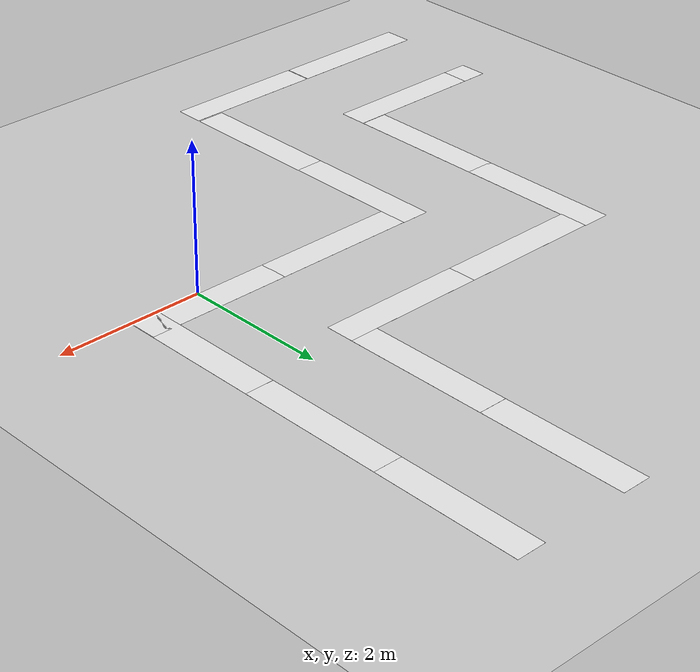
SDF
<sdf version="1.6">
 <world name="default">
  <light name="sun" type="directional">
   <pose>0 0 10 0 -0 0</pose>
   <diffuse>0.8 0.8 0.8 1</diffuse>
   <specular>0.2 0.2 0.2 1</specular>
   <attenuation>
    <range>1000</range>
    <constant>0.9</constant>
    <linear>0.01</linear>
    <quadratic>0.001</quadratic>
   </attenuation>
   <direction>-0.5 0.1 -0.9</direction>
  </light>
  <model name="ground_plane">
   <static>1</static>
   <link name="link">
    <collision name="collision">
     <geometry><plane><normal>0 0 1</normal><size>100 100</size></plane></geometry>
     <surface>
      <contact><collide_bitmask>65535</collide_bitmask></contact>
      <friction><ode><mu>100</mu><mu2>50</mu2></ode></friction>
     </surface>
    </collision>
    <visual name="visual">
     <cast_shadows>0</cast_shadows>
     <geometry><plane><normal>0 0 1</normal><size>100 100</size></plane></geometry>
     <material>
      <script><uri>file://media/materials/scripts/gazebo.material</uri><name>Gazebo/Grey</name></script>
     </material>
    </visual>
   </link>
  </model>
  <gravity>0 0 -9.8</gravity>
  <magnetic_field>6e-06 2.3e-05 -4.2e-05</magnetic_field>
  <atmosphere type="adiabatic"/>
  <physics name="default_physics" default="0" type="ode">
   <max_step_size>0.001</max_step_size>
   <real_time_factor>1</real_time_factor>
   <real_time_update_rate>1000</real_time_update_rate>
  </physics>
  <scene><ambient>0.4 0.4 0.4 1</ambient><background>0.7 0.7 0.7 1</background><shadows>1</shadows></scene>
  <audio><device>default</device></audio>
  <spherical_coordinates>
   <surface_model>EARTH_WGS84</surface_model>
   <latitude_deg>0</latitude_deg>
   <longitude_deg>0</longitude_deg>
   <elevation>0</elevation>
   <heading_deg>0</heading_deg>
  </spherical_coordinates>
  <model name="white line">
   <static>1</static>
   <link name="link_ground">
    <collision name="collision">
     <geometry><plane><normal>0 0 1</normal><size>0.4 2</size></plane></geometry>
     <surface><friction><ode><mu>100</mu><mu2>50</mu2></ode></friction></surface>
    </collision>
    <visual name="visual_ground">
     <cast_shadows>0</cast_shadows>
     <geometry><plane><normal>0 0 1</normal><size>0.4 2</size></plane></geometry>
     <material>
      <script><uri>file://media/materials/scripts/gazebo.material</uri><name>Gazebo/White</name></script>
     </material>
    </visual>
   </link>
   <pose>0.800172 5.00563 0 0 -0 0</pose>
  </model>
  <model name="white line_0">
   <static>1</static>
   <link name="link_ground">
    <collision name="collision">
     <geometry><plane><normal>0 0 1</normal><size>0.4 2</size></plane></geometry>
     <surface><friction><ode><mu>100</mu><mu2>50</mu2></ode></friction></surface>
    </collision>
    <visual name="visual_ground">
     <cast_shadows>0</cast_shadows>
     <geometry><plane><normal>0 0 1</normal><size>0.4 2</size></plane></geometry>
     <material>
      <script><uri>file://media/materials/scripts/gazebo.material</uri><name>Gazebo/White</name></script>
     </material>
    </visual>
   </link>
   <pose>-0.790538 4.99508 0 0 -0 0</pose>
  </model>
  <model name="white line_1">
   <static>1</static>
   <link name="link_ground">
    <collision name="collision">
     <geometry><plane><normal>0 0 1</normal><size>0.4 2</size></plane></geometry>
     <surface><friction><ode><mu>100</mu><mu2>50</mu2></ode></friction></surface>
    </collision>
    <visual name="visual_ground">
     <cast_shadows>0</cast_shadows>
     <geometry><plane><normal>0 0 1</normal><size>0.4 2</size></plane></geometry>
     <material>
      <script><uri>file://media/materials/scripts/gazebo.material</uri><name>Gazebo/White</name></script>
     </material>
    </visual>
   </link>
   <pose>0.800171 3.0052 0 0 -0 0</pose>
  </model>
  <model name="white line_2">
   <static>1</static>
   <link name="link_ground">
    <collision name="collision">
     <geometry><plane><normal>0 0 1</normal><size>0.4 2</size></plane></geometry>
     <surface><friction><ode><mu>100</mu><mu2>50</mu2></ode></friction></surface>
    </collision>
    <visual name="visual_ground">
     <cast_shadows>0</cast_shadows>
     <geometry><plane><normal>0 0 1</normal><size>0.4 2</size></plane></geometry>
     <material>
      <script><uri>file://media/materials/scripts/gazebo.material</uri><name>Gazebo/White</name></script>
     </material>
    </visual>
   </link>
   <pose>-0.790538 2.99365 0 0 -0 0</pose>
  </model>
  <model name="white line_3">
   <static>1</static>
   <link name="link_ground">
    <collision name="collision">
     <geometry><plane><normal>0 0 1</normal><size>0.4 2</size></plane></geometry>
     <surface><friction><ode><mu>100</mu><mu2>50</mu2></ode></friction></surface>
    </collision>
    <visual name="visual_ground">
     <cast_shadows>0</cast_shadows>
     <geometry><plane><normal>0 0 1</normal><size>0.4 2</size></plane></geometry>
     <material>
      <script><uri>file://media/materials/scripts/gazebo.material</uri><name>Gazebo/White</name></script>
     </material>
    </visual>
   </link>
   <pose>0.800171 1.00381 0 0 -0 0</pose>
  </model>
  <model name="white line_4">
   <static>1</static>
   <link name="link_ground">
    <collision name="collision">
     <geometry><plane><normal>0 0 1</normal><size>2 0.4</size></plane></geometry>
     <surface><friction><ode><mu>100</mu><mu2>50</mu2></ode></friction></surface>
    </collision>
    <visual name="visual_ground">
     <cast_shadows>0</cast_shadows>
     <geometry><plane><normal>0 0 1</normal><size>2 0.4</size></plane></geometry>
     <material>
      <script><uri>file://media/materials/scripts/gazebo.material</uri><name>Gazebo/White</name></script>
     </material>
    </visual>
   </link>
   <pose>-1.59135 1.7952 0 0 -0 0</pose>
  </model>
  <model name="white line_5">
   <static>1</static>
   <link name="link_ground">
    <collision name="collision">
     <geometry><plane><normal>0 0 1</normal><size>2 0.4</size></plane></geometry>
     <surface><friction><ode><mu>100</mu><mu2>50</mu2></ode></friction></surface>
    </collision>
    <visual name="visual_ground">
     <cast_shadows>0</cast_shadows>
     <geometry><plane><normal>0 0 1</normal><size>2 0.4</size></plane></geometry>
     <material>
      <script><uri>file://media/materials/scripts/gazebo.material</uri><name>Gazebo/White</name></script>
     </material>
    </visual>
   </link>
   <pose>-0.006034 0.204939 0 0 -0 0</pose>
  </model>
  <model name="white line_6">
   <static>1</static>
   <link name="link_ground">
    <collision name="collision">
     <geometry><plane><normal>0 0 1</normal><size>2 0.4</size></plane></geometry>
     <surface><friction><ode><mu>100</mu><mu2>50</mu2></ode></friction></surface>
    </collision>
    <visual name="visual_ground">
     <cast_shadows>0</cast_shadows>
     <geometry><plane><normal>0 0 1</normal><size>2 0.4</size></plane></geometry>
     <material>
      <script><uri>file://media/materials/scripts/gazebo.material</uri><name>Gazebo/White</name></script>
     </material>
    </visual>
   </link>
   <pose>-1.99561 0.204939 0 0 -0 0</pose>
  </model>
  <model name="white line_7">
   <static>1</static>
   <link name="link_ground">
    <collision name="collision">
     <geometry><plane><normal>0 0 1</normal><size>2 0.4</size></plane></geometry>
     <surface><friction><ode><mu>100</mu><mu2>50</mu2></ode></friction></surface>
    </collision>
    <visual name="visual_ground">
     <cast_shadows>0</cast_shadows>
     <geometry><plane><normal>0 0 1</normal><size>2 0.4</size></plane></geometry>
     <material>
      <script><uri>file://media/materials/scripts/gazebo.material</uri><name>Gazebo/White</name></script>
     </material>
    </visual>
   </link>
   <pose>-3.58774 1.79679 0 0 -0 0</pose>
  </model>
  <model name="white line_8">
   <static>1</static>
   <link name="link_ground">
    <collision name="collision">
     <geometry><plane><normal>0 0 1</normal><size>0.4 2</size></plane></geometry>
     <surface><friction><ode><mu>100</mu><mu2>50</mu2></ode></friction></surface>
    </collision>
    <visual name="visual_ground">
     <cast_shadows>0</cast_shadows>
     <geometry><plane><normal>0 0 1</normal><size>0.4 2</size></plane></geometry>
     <material>
      <script><uri>file://media/materials/scripts/gazebo.material</uri><name>Gazebo/White</name></script>
     </material>
    </visual>
   </link>
   <pose>-3.19122 -0.589314 0 0 -0 0</pose>
  </model>
  <model name="white line_9">
   <static>1</static>
   <link name="link_ground">
    <collision name="collision">
     <geometry><plane><normal>0 0 1</normal><size>0.4 2</size></plane></geometry>
     <surface><friction><ode><mu>100</mu><mu2>50</mu2></ode></friction></surface>
    </collision>
    <visual name="visual_ground">
     <cast_shadows>0</cast_shadows>
     <geometry><plane><normal>0 0 1</normal><size>0.4 2</size></plane></geometry>
     <material>
      <script><uri>file://media/materials/scripts/gazebo.material</uri><name>Gazebo/White</name></script>
     </material>
    </visual>
   </link>
   <pose>-4.7774 1.00371 0 0 -0 0</pose>
  </model>
  <model name="white line_10">
   <static>1</static>
   <link name="link_ground">
    <collision name="collision">
     <geometry><plane><normal>0 0 1</normal><size>0.4 2</size></plane></geometry>
     <surface><friction><ode><mu>100</mu><mu2>50</mu2></ode></friction></surface>
    </collision>
    <visual name="visual_ground">
     <cast_shadows>0</cast_shadows>
     <geometry><plane><normal>0 0 1</normal><size>0.4 2</size></plane></geometry>
     <material>
      <script><uri>file://media/materials/scripts/gazebo.material</uri><name>Gazebo/White</name></script>
     </material>
    </visual>
   </link>
   <pose>-4.7774 -0.979035 0 0 -0 0</pose>
  </model>
  <model name="white line_11">
   <static>1</static>
   <link name="link_ground">
    <collision name="collision">
     <geometry><plane><normal>0 0 1</normal><size>0.4 2</size></plane></geometry>
     <surface><friction><ode><mu>100</mu><mu2>50</mu2></ode></friction></surface>
    </collision>
    <visual name="visual_ground">
     <cast_shadows>0</cast_shadows>
     <geometry><plane><normal>0 0 1</normal><size>0.4 2</size></plane></geometry>
     <material>
      <script><uri>file://media/materials/scripts/gazebo.material</uri><name>Gazebo/White</name></script>
     </material>
    </visual>
   </link>
   <pose>-3.1898 -2.55011 0 0 -0 0</pose>
  </model>
  <model name="white line_12">
   <static>1</static>
   <link name="link_ground">
    <collision name="collision">
     <geometry><plane><normal>0 0 1</normal><size>2 0.4</size></plane></geometry>
     <surface><friction><ode><mu>100</mu><mu2>50</mu2></ode></friction></surface>
    </collision>
    <visual name="visual_ground">
     <cast_shadows>0</cast_shadows>
     <geometry><plane><normal>0 0 1</normal><size>2 0.4</size></plane></geometry>
     <material>
      <script><uri>file://media/materials/scripts/gazebo.material</uri><name>Gazebo/White</name></script>
     </material>
    </visual>
   </link>
   <pose>-3.99394 -3.77074 0 0 -0 0</pose>
  </model>
  <model name="white line_13">
   <static>1</static>
   <link name="link_ground">
    <collision name="collision">
     <geometry><plane><normal>0 0 1</normal><size>2 0.4</size></plane></geometry>
     <surface><friction><ode><mu>100</mu><mu2>50</mu2></ode></friction></surface>
    </collision>
    <visual name="visual_ground">
     <cast_shadows>0</cast_shadows>
     <geometry><plane><normal>0 0 1</normal><size>2 0.4</size></plane></geometry>
     <material>
      <script><uri>file://media/materials/scripts/gazebo.material</uri><name>Gazebo/White</name></script>
     </material>
    </visual>
   </link>
   <pose>-5.57694 -2.1864 0 0 -0 0</pose>
  </model>
  <model name="white line_14">
   <static>1</static>
   <link name="link_ground">
    <collision name="collision">
     <geometry><plane><normal>0 0 1</normal><size>2 0.4</size></plane></geometry>
     <surface><friction><ode><mu>100</mu><mu2>50</mu2></ode></friction></surface>
    </collision>
    <visual name="visual_ground">
     <cast_shadows>0</cast_shadows>
     <geometry><plane><normal>0 0 1</normal><size>2 0.4</size></plane></geometry>
     <material>
      <script><uri>file://media/materials/scripts/gazebo.material</uri><name>Gazebo/White</name></script>
     </material>
    </visual>
   </link>
   <pose>-6.00433 -3.77008 0 0 -0 0</pose>
  </model>
  <model name="white line_15">
   <static>1</static>
   <link name="link_ground">
    <collision name="collision">
     <geometry><plane><normal>0 0 1</normal><size>0.4 0.4</size></plane></geometry>
     <surface><friction><ode><mu>100</mu><mu2>50</mu2></ode></friction></surface>
    </collision>
    <visual name="visual_ground">
     <cast_shadows>0</cast_shadows>
     <geometry><plane><normal>0 0 1</normal><size>0.4 0.4</size></plane></geometry>
     <material>
      <script><uri>file://media/materials/scripts/gazebo.material</uri><name>Gazebo/White</name></script>
     </material>
    </visual>
   </link>
   <pose>-6.74875 -2.1863 0 0 -0 0</pose>
  </model>
 </world>
</sdf>
